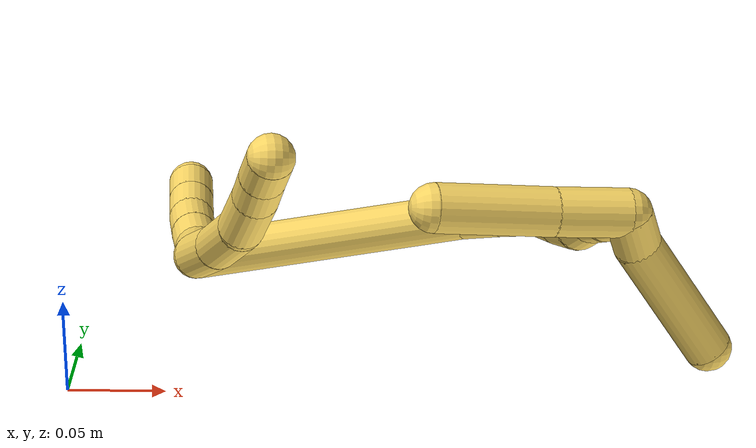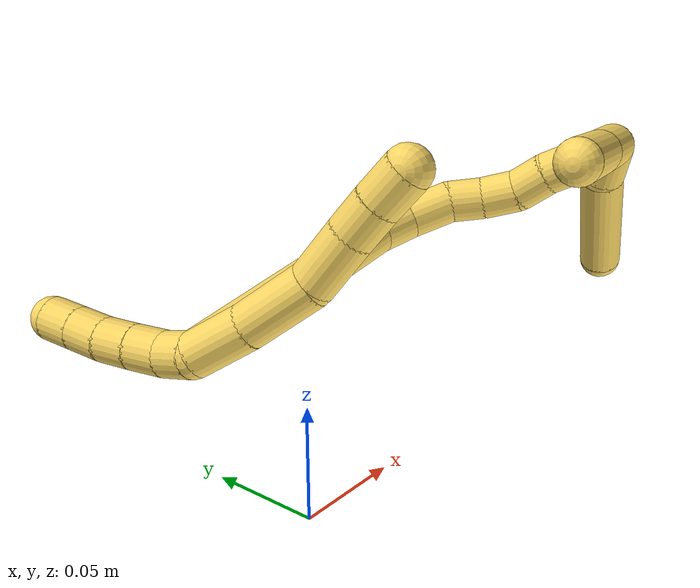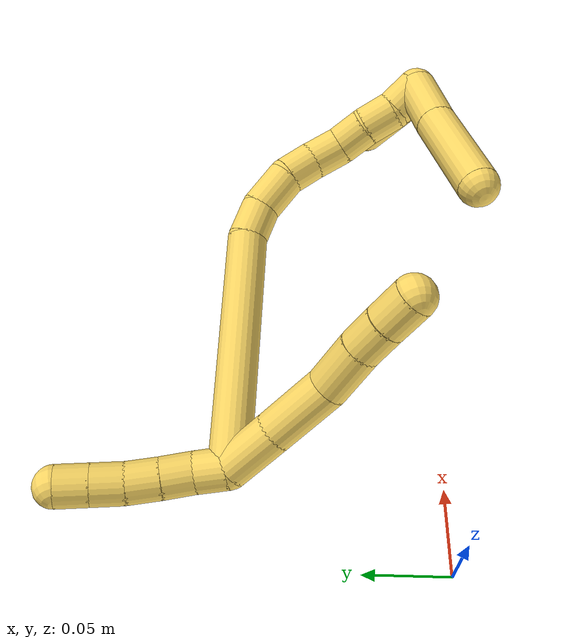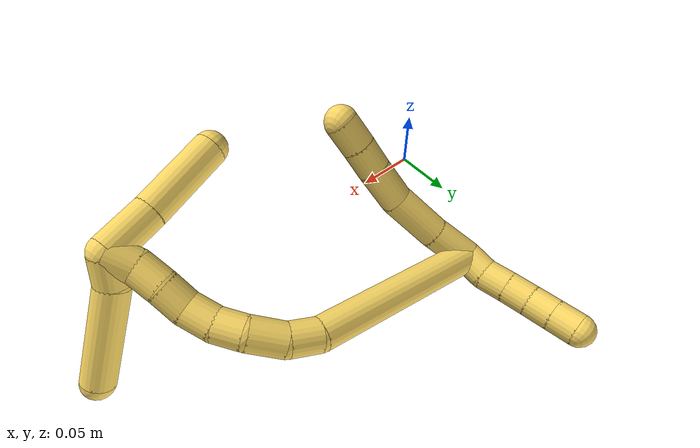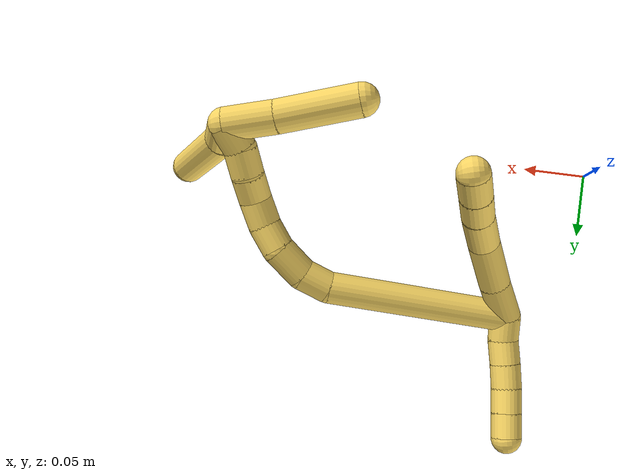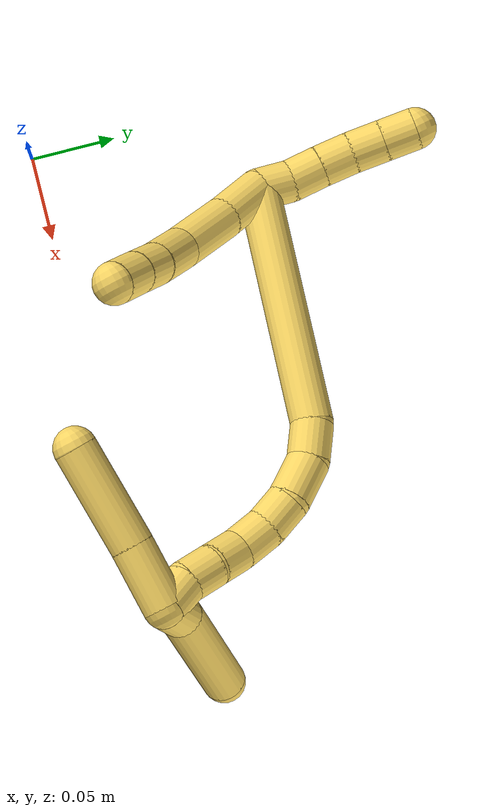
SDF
<sdf version="1.7">
 <world name="default">
  <model name="5">
   <static>0</static>
   <link name="5">
    <collision name="collision-cylinder-e_1_2_8">
     <pose>-0.003551 -0.016236 0.003003 1.38793 -0.211841 -0.176459</pose>
     <geometry><cylinder><radius>0.0125</radius><length>0.033777</length></cylinder></geometry>
     <surface>
      <friction><ode><mu>1.16</mu><mu2>1.16</mu2><slip1>0</slip1><slip2>0</slip2></ode></friction>
      <contact><ode><kp>1e+06</kp><kd>1</kd><max_vel>0</max_vel><min_depth>0.001</min_depth></ode></contact>
     </surface>
    </collision>
    <visual name="visual-cylinder-e_1_2_8">
     <pose>-0.003551 -0.016236 0.003003 1.38793 -0.211841 -0.176459</pose>
     <geometry><cylinder><radius>0.0125</radius><length>0.033777</length></cylinder></geometry>
     <material><ambient>1 0.858824 0.4 1</ambient></material>
    </visual>
    <collision name="collision-cylinder-e_2_8_9">
     <pose>-0.013066 -0.052105 0.008677 1.43553 -0.292364 -0.255701</pose>
     <geometry><cylinder><radius>0.0125</radius><length>0.041385</length></cylinder></geometry>
     <surface>
      <friction><ode><mu>1.16</mu><mu2>1.16</mu2><slip1>0</slip1><slip2>0</slip2></ode></friction>
      <contact><ode><kp>1e+06</kp><kd>1</kd><max_vel>0</max_vel><min_depth>0.001</min_depth></ode></contact>
     </surface>
    </collision>
    <visual name="visual-cylinder-e_2_8_9">
     <pose>-0.013066 -0.052105 0.008677 1.43553 -0.292364 -0.255701</pose>
     <geometry><cylinder><radius>0.0125</radius><length>0.041385</length></cylinder></geometry>
     <material><ambient>1 0.858824 0.4 1</ambient></material>
    </visual>
    <collision name="collision-cylinder-e_3_9_10">
     <pose>-0.02767 -0.084962 0.012596 1.47681 -0.576718 -0.527387</pose>
     <geometry><cylinder><radius>0.0125</radius><length>0.031691</length></cylinder></geometry>
     <surface>
      <friction><ode><mu>1.16</mu><mu2>1.16</mu2><slip1>0</slip1><slip2>0</slip2></ode></friction>
      <contact><ode><kp>1e+06</kp><kd>1</kd><max_vel>0</max_vel><min_depth>0.001</min_depth></ode></contact>
     </surface>
    </collision>
    <visual name="visual-cylinder-e_3_9_10">
     <pose>-0.02767 -0.084962 0.012596 1.47681 -0.576718 -0.527387</pose>
     <geometry><cylinder><radius>0.0125</radius><length>0.031691</length></cylinder></geometry>
     <material><ambient>1 0.858824 0.4 1</ambient></material>
    </visual>
    <collision name="collision-cylinder-e_4_10_11">
     <pose>-0.041745 -0.10725 0.013912 1.56317 -0.540081 -0.536172</pose>
     <geometry><cylinder><radius>0.0125</radius><length>0.021137</length></cylinder></geometry>
     <surface>
      <friction><ode><mu>1.16</mu><mu2>1.16</mu2><slip1>0</slip1><slip2>0</slip2></ode></friction>
      <contact><ode><kp>1e+06</kp><kd>1</kd><max_vel>0</max_vel><min_depth>0.001</min_depth></ode></contact>
     </surface>
    </collision>
    <visual name="visual-cylinder-e_4_10_11">
     <pose>-0.041745 -0.10725 0.013912 1.56317 -0.540081 -0.536172</pose>
     <geometry><cylinder><radius>0.0125</radius><length>0.021137</length></cylinder></geometry>
     <material><ambient>1 0.858824 0.4 1</ambient></material>
    </visual>
    <collision name="collision-cylinder-e_5_11_6">
     <pose>-0.052513 -0.125939 0.014141 1.55417 -0.506052 -0.498053</pose>
     <geometry><cylinder><radius>0.0125</radius><length>0.02201</length></cylinder></geometry>
     <surface>
      <friction><ode><mu>1.16</mu><mu2>1.16</mu2><slip1>0</slip1><slip2>0</slip2></ode></friction>
      <contact><ode><kp>1e+06</kp><kd>1</kd><max_vel>0</max_vel><min_depth>0.001</min_depth></ode></contact>
     </surface>
    </collision>
    <visual name="visual-cylinder-e_5_11_6">
     <pose>-0.052513 -0.125939 0.014141 1.55417 -0.506052 -0.498053</pose>
     <geometry><cylinder><radius>0.0125</radius><length>0.02201</length></cylinder></geometry>
     <material><ambient>1 0.858824 0.4 1</ambient></material>
    </visual>
    <collision name="collision-cylinder-e_1_2_12">
     <pose>-0.00159 0.009663 0.002024 -1.36432 -0.159677 0.12979</pose>
     <geometry><cylinder><radius>0.0125</radius><length>0.02</length></cylinder></geometry>
     <surface>
      <friction><ode><mu>1.16</mu><mu2>1.16</mu2><slip1>0</slip1><slip2>0</slip2></ode></friction>
      <contact><ode><kp>1e+06</kp><kd>1</kd><max_vel>0</max_vel><min_depth>0.001</min_depth></ode></contact>
     </surface>
    </collision>
    <visual name="visual-cylinder-e_1_2_12">
     <pose>-0.00159 0.009663 0.002024 -1.36432 -0.159677 0.12979</pose>
     <geometry><cylinder><radius>0.0125</radius><length>0.02</length></cylinder></geometry>
     <material><ambient>1 0.858824 0.4 1</ambient></material>
    </visual>
    <collision name="collision-cylinder-e_2_12_13">
     <pose>-0.006874 0.028612 0.004397 -1.53322 -0.378322 0.364678</pose>
     <geometry><cylinder><radius>0.0125</radius><length>0.02</length></cylinder></geometry>
     <surface>
      <friction><ode><mu>1.16</mu><mu2>1.16</mu2><slip1>0</slip1><slip2>0</slip2></ode></friction>
      <contact><ode><kp>1e+06</kp><kd>1</kd><max_vel>0</max_vel><min_depth>0.001</min_depth></ode></contact>
     </surface>
    </collision>
    <visual name="visual-cylinder-e_2_12_13">
     <pose>-0.006874 0.028612 0.004397 -1.53322 -0.378322 0.364678</pose>
     <geometry><cylinder><radius>0.0125</radius><length>0.02</length></cylinder></geometry>
     <material><ambient>1 0.858824 0.4 1</ambient></material>
    </visual>
    <collision name="collision-cylinder-e_3_13_14">
     <pose>-0.014324 0.047139 0.00545 -1.49483 -0.385154 0.357573</pose>
     <geometry><cylinder><radius>0.0125</radius><length>0.02</length></cylinder></geometry>
     <surface>
      <friction><ode><mu>1.16</mu><mu2>1.16</mu2><slip1>0</slip1><slip2>0</slip2></ode></friction>
      <contact><ode><kp>1e+06</kp><kd>1</kd><max_vel>0</max_vel><min_depth>0.001</min_depth></ode></contact>
     </surface>
    </collision>
    <visual name="visual-cylinder-e_3_13_14">
     <pose>-0.014324 0.047139 0.00545 -1.49483 -0.385154 0.357573</pose>
     <geometry><cylinder><radius>0.0125</radius><length>0.02</length></cylinder></geometry>
     <material><ambient>1 0.858824 0.4 1</ambient></material>
    </visual>
    <collision name="collision-cylinder-e_4_14_15">
     <pose>-0.022601 0.06521 0.007422 -1.42808 -0.46899 0.408267</pose>
     <geometry><cylinder><radius>0.0125</radius><length>0.02</length></cylinder></geometry>
     <surface>
      <friction><ode><mu>1.16</mu><mu2>1.16</mu2><slip1>0</slip1><slip2>0</slip2></ode></friction>
      <contact><ode><kp>1e+06</kp><kd>1</kd><max_vel>0</max_vel><min_depth>0.001</min_depth></ode></contact>
     </surface>
    </collision>
    <visual name="visual-cylinder-e_4_14_15">
     <pose>-0.022601 0.06521 0.007422 -1.42808 -0.46899 0.408267</pose>
     <geometry><cylinder><radius>0.0125</radius><length>0.02</length></cylinder></geometry>
     <material><ambient>1 0.858824 0.4 1</ambient></material>
    </visual>
    <collision name="collision-cylinder-e_5_15_5">
     <pose>-0.031648 0.082864 0.009966 -1.42724 -0.469769 0.408612</pose>
     <geometry><cylinder><radius>0.0125</radius><length>0.02</length></cylinder></geometry>
     <surface>
      <friction><ode><mu>1.16</mu><mu2>1.16</mu2><slip1>0</slip1><slip2>0</slip2></ode></friction>
      <contact><ode><kp>1e+06</kp><kd>1</kd><max_vel>0</max_vel><min_depth>0.001</min_depth></ode></contact>
     </surface>
    </collision>
    <visual name="visual-cylinder-e_5_15_5">
     <pose>-0.031648 0.082864 0.009966 -1.42724 -0.469769 0.408612</pose>
     <geometry><cylinder><radius>0.0125</radius><length>0.02</length></cylinder></geometry>
     <material><ambient>1 0.858824 0.4 1</ambient></material>
    </visual>
    <collision name="collision-cylinder-e_1_2_16">
     <pose>-0.013016 -0.026775 0.067384 0.378221 -0.177621 -0.034083</pose>
     <geometry><cylinder><radius>0.0125</radius><length>0.147334</length></cylinder></geometry>
     <surface>
      <friction><ode><mu>1.16</mu><mu2>1.16</mu2><slip1>0</slip1><slip2>0</slip2></ode></friction>
      <contact><ode><kp>1e+06</kp><kd>1</kd><max_vel>0</max_vel><min_depth>0.001</min_depth></ode></contact>
     </surface>
    </collision>
    <visual name="visual-cylinder-e_1_2_16">
     <pose>-0.013016 -0.026775 0.067384 0.378221 -0.177621 -0.034083</pose>
     <geometry><cylinder><radius>0.0125</radius><length>0.147334</length></cylinder></geometry>
     <material><ambient>1 0.858824 0.4 1</ambient></material>
    </visual>
    <collision name="collision-cylinder-e_2_16_17">
     <pose>-0.027211 -0.060798 0.143576 0.688518 -0.102936 -0.036935</pose>
     <geometry><cylinder><radius>0.0125</radius><length>0.022936</length></cylinder></geometry>
     <surface>
      <friction><ode><mu>1.16</mu><mu2>1.16</mu2><slip1>0</slip1><slip2>0</slip2></ode></friction>
      <contact><ode><kp>1e+06</kp><kd>1</kd><max_vel>0</max_vel><min_depth>0.001</min_depth></ode></contact>
     </surface>
    </collision>
    <visual name="visual-cylinder-e_2_16_17">
     <pose>-0.027211 -0.060798 0.143576 0.688518 -0.102936 -0.036935</pose>
     <geometry><cylinder><radius>0.0125</radius><length>0.022936</length></cylinder></geometry>
     <material><ambient>1 0.858824 0.4 1</ambient></material>
    </visual>
    <collision name="collision-cylinder-e_3_17_18">
     <pose>-0.02941 -0.079597 0.159304 1.03106 -0.075695 -0.042906</pose>
     <geometry><cylinder><radius>0.0125</radius><length>0.027007</length></cylinder></geometry>
     <surface>
      <friction><ode><mu>1.16</mu><mu2>1.16</mu2><slip1>0</slip1><slip2>0</slip2></ode></friction>
      <contact><ode><kp>1e+06</kp><kd>1</kd><max_vel>0</max_vel><min_depth>0.001</min_depth></ode></contact>
     </surface>
    </collision>
    <visual name="visual-cylinder-e_3_17_18">
     <pose>-0.02941 -0.079597 0.159304 1.03106 -0.075695 -0.042906</pose>
     <geometry><cylinder><radius>0.0125</radius><length>0.027007</length></cylinder></geometry>
     <material><ambient>1 0.858824 0.4 1</ambient></material>
    </visual>
    <collision name="collision-cylinder-e_4_18_19">
     <pose>-0.02852 -0.100475 0.169827 1.20213 0.188911 0.129741</pose>
     <geometry><cylinder><radius>0.0125</radius><length>0.020361</length></cylinder></geometry>
     <surface>
      <friction><ode><mu>1.16</mu><mu2>1.16</mu2><slip1>0</slip1><slip2>0</slip2></ode></friction>
      <contact><ode><kp>1e+06</kp><kd>1</kd><max_vel>0</max_vel><min_depth>0.001</min_depth></ode></contact>
     </surface>
    </collision>
    <visual name="visual-cylinder-e_4_18_19">
     <pose>-0.02852 -0.100475 0.169827 1.20213 0.188911 0.129741</pose>
     <geometry><cylinder><radius>0.0125</radius><length>0.020361</length></cylinder></geometry>
     <material><ambient>1 0.858824 0.4 1</ambient></material>
    </visual>
    <collision name="collision-cylinder-e_5_19_20">
     <pose>-0.025879 -0.120305 0.175133 1.4101 0.068343 0.058163</pose>
     <geometry><cylinder><radius>0.0125</radius><length>0.021328</length></cylinder></geometry>
     <surface>
      <friction><ode><mu>1.16</mu><mu2>1.16</mu2><slip1>0</slip1><slip2>0</slip2></ode></friction>
      <contact><ode><kp>1e+06</kp><kd>1</kd><max_vel>0</max_vel><min_depth>0.001</min_depth></ode></contact>
     </surface>
    </collision>
    <visual name="visual-cylinder-e_5_19_20">
     <pose>-0.025879 -0.120305 0.175133 1.4101 0.068343 0.058163</pose>
     <geometry><cylinder><radius>0.0125</radius><length>0.021328</length></cylinder></geometry>
     <material><ambient>1 0.858824 0.4 1</ambient></material>
    </visual>
    <collision name="collision-cylinder-e_6_20_21">
     <pose>-0.027671 -0.140691 0.177068 1.54727 -0.249522 -0.243778</pose>
     <geometry><cylinder><radius>0.0125</radius><length>0.020405</length></cylinder></geometry>
     <surface>
      <friction><ode><mu>1.16</mu><mu2>1.16</mu2><slip1>0</slip1><slip2>0</slip2></ode></friction>
      <contact><ode><kp>1e+06</kp><kd>1</kd><max_vel>0</max_vel><min_depth>0.001</min_depth></ode></contact>
     </surface>
    </collision>
    <visual name="visual-cylinder-e_6_20_21">
     <pose>-0.027671 -0.140691 0.177068 1.54727 -0.249522 -0.243778</pose>
     <geometry><cylinder><radius>0.0125</radius><length>0.020405</length></cylinder></geometry>
     <material><ambient>1 0.858824 0.4 1</ambient></material>
    </visual>
    <collision name="collision-cylinder-e_7_21_22">
     <pose>-0.031073 -0.160765 0.177688 1.53273 -0.086393 -0.083169</pose>
     <geometry><cylinder><radius>0.0125</radius><length>0.020473</length></cylinder></geometry>
     <surface>
      <friction><ode><mu>1.16</mu><mu2>1.16</mu2><slip1>0</slip1><slip2>0</slip2></ode></friction>
      <contact><ode><kp>1e+06</kp><kd>1</kd><max_vel>0</max_vel><min_depth>0.001</min_depth></ode></contact>
     </surface>
    </collision>
    <visual name="visual-cylinder-e_7_21_22">
     <pose>-0.031073 -0.160765 0.177688 1.53273 -0.086393 -0.083169</pose>
     <geometry><cylinder><radius>0.0125</radius><length>0.020473</length></cylinder></geometry>
     <material><ambient>1 0.858824 0.4 1</ambient></material>
    </visual>
    <collision name="collision-cylinder-e_8_22_1">
     <pose>-0.033551 -0.180423 0.181142 1.25764 -0.158857 -0.115653</pose>
     <geometry><cylinder><radius>0.0125</radius><length>0.020155</length></cylinder></geometry>
     <surface>
      <friction><ode><mu>1.16</mu><mu2>1.16</mu2><slip1>0</slip1><slip2>0</slip2></ode></friction>
      <contact><ode><kp>1e+06</kp><kd>1</kd><max_vel>0</max_vel><min_depth>0.001</min_depth></ode></contact>
     </surface>
    </collision>
    <visual name="visual-cylinder-e_8_22_1">
     <pose>-0.033551 -0.180423 0.181142 1.25764 -0.158857 -0.115653</pose>
     <geometry><cylinder><radius>0.0125</radius><length>0.020155</length></cylinder></geometry>
     <material><ambient>1 0.858824 0.4 1</ambient></material>
    </visual>
    <collision name="collision-cylinder-e_1_1_23">
     <pose>-0.035156 -0.189932 0.165225 3.13942 -0.000584 -0.524577</pose>
     <geometry><cylinder><radius>0.0125</radius><length>0.037966</length></cylinder></geometry>
     <surface>
      <friction><ode><mu>1.16</mu><mu2>1.16</mu2><slip1>0</slip1><slip2>0</slip2></ode></friction>
      <contact><ode><kp>1e+06</kp><kd>1</kd><max_vel>0</max_vel><min_depth>0.001</min_depth></ode></contact>
     </surface>
    </collision>
    <visual name="visual-cylinder-e_1_1_23">
     <pose>-0.035156 -0.189932 0.165225 3.13942 -0.000584 -0.524577</pose>
     <geometry><cylinder><radius>0.0125</radius><length>0.037966</length></cylinder></geometry>
     <material><ambient>1 0.858824 0.4 1</ambient></material>
    </visual>
    <collision name="collision-cylinder-e_2_23_4">
     <pose>-0.035834 -0.19155 0.115272 3.09072 -0.021518 -0.800149</pose>
     <geometry><cylinder><radius>0.0125</radius><length>0.062034</length></cylinder></geometry>
     <surface>
      <friction><ode><mu>1.16</mu><mu2>1.16</mu2><slip1>0</slip1><slip2>0</slip2></ode></friction>
      <contact><ode><kp>1e+06</kp><kd>1</kd><max_vel>0</max_vel><min_depth>0.001</min_depth></ode></contact>
     </surface>
    </collision>
    <visual name="visual-cylinder-e_2_23_4">
     <pose>-0.035834 -0.19155 0.115272 3.09072 -0.021518 -0.800149</pose>
     <geometry><cylinder><radius>0.0125</radius><length>0.062034</length></cylinder></geometry>
     <material><ambient>1 0.858824 0.4 1</ambient></material>
    </visual>
    <collision name="collision-cylinder-e_1_1_24">
     <pose>-0.026871 -0.18356 0.189025 -0.920281 0.805054 -0.415946</pose>
     <geometry><cylinder><radius>0.0125</radius><length>0.022955</length></cylinder></geometry>
     <surface>
      <friction><ode><mu>1.16</mu><mu2>1.16</mu2><slip1>0</slip1><slip2>0</slip2></ode></friction>
      <contact><ode><kp>1e+06</kp><kd>1</kd><max_vel>0</max_vel><min_depth>0.001</min_depth></ode></contact>
     </surface>
    </collision>
    <visual name="visual-cylinder-e_1_1_24">
     <pose>-0.026871 -0.18356 0.189025 -0.920281 0.805054 -0.415946</pose>
     <geometry><cylinder><radius>0.0125</radius><length>0.022955</length></cylinder></geometry>
     <material><ambient>1 0.858824 0.4 1</ambient></material>
    </visual>
    <collision name="collision-cylinder-e_2_24_3">
     <pose>0.008333 -0.16385 0.217919 -0.507236 0.774126 -0.210532</pose>
     <geometry><cylinder><radius>0.0125</radius><length>0.077045</length></cylinder></geometry>
     <surface>
      <friction><ode><mu>1.16</mu><mu2>1.16</mu2><slip1>0</slip1><slip2>0</slip2></ode></friction>
      <contact><ode><kp>1e+06</kp><kd>1</kd><max_vel>0</max_vel><min_depth>0.001</min_depth></ode></contact>
     </surface>
    </collision>
    <visual name="visual-cylinder-e_2_24_3">
     <pose>0.008333 -0.16385 0.217919 -0.507236 0.774126 -0.210532</pose>
     <geometry><cylinder><radius>0.0125</radius><length>0.077045</length></cylinder></geometry>
     <material><ambient>1 0.858824 0.4 1</ambient></material>
    </visual>
    <collision name="collision-sphere-3">
     <pose>0.035264 -0.150469 0.241995 0 -0 0</pose>
     <geometry><sphere><radius>0.0125</radius></sphere></geometry>
     <surface>
      <friction><ode><mu>1.16</mu><mu2>1.16</mu2><slip1>0</slip1><slip2>0</slip2></ode></friction>
      <contact><ode><kp>1e+06</kp><kd>1</kd><max_vel>0</max_vel><min_depth>0.001</min_depth></ode></contact>
     </surface>
    </collision>
    <visual name="visual-sphere-3">
     <pose>0.035264 -0.150469 0.241995 0 -0 0</pose>
     <geometry><sphere><radius>0.0125</radius></sphere></geometry>
     <material><ambient>1 0.858824 0.4 1</ambient></material>
    </visual>
    <collision name="collision-sphere-24">
     <pose>-0.018598 -0.17723 0.193842 0 -0 0</pose>
     <geometry><sphere><radius>0.0125</radius></sphere></geometry>
     <surface>
      <friction><ode><mu>1.16</mu><mu2>1.16</mu2><slip1>0</slip1><slip2>0</slip2></ode></friction>
      <contact><ode><kp>1e+06</kp><kd>1</kd><max_vel>0</max_vel><min_depth>0.001</min_depth></ode></contact>
     </surface>
    </collision>
    <visual name="visual-sphere-24">
     <pose>-0.018598 -0.17723 0.193842 0 -0 0</pose>
     <geometry><sphere><radius>0.0125</radius></sphere></geometry>
     <material><ambient>1 0.858824 0.4 1</ambient></material>
    </visual>
    <collision name="collision-sphere-4">
     <pose>-0.036502 -0.193127 0.084302 0 -0 0</pose>
     <geometry><sphere><radius>0.0125</radius></sphere></geometry>
     <surface>
      <friction><ode><mu>1.16</mu><mu2>1.16</mu2><slip1>0</slip1><slip2>0</slip2></ode></friction>
      <contact><ode><kp>1e+06</kp><kd>1</kd><max_vel>0</max_vel><min_depth>0.001</min_depth></ode></contact>
     </surface>
    </collision>
    <visual name="visual-sphere-4">
     <pose>-0.036502 -0.193127 0.084302 0 -0 0</pose>
     <geometry><sphere><radius>0.0125</radius></sphere></geometry>
     <material><ambient>1 0.858824 0.4 1</ambient></material>
    </visual>
    <collision name="collision-sphere-23">
     <pose>-0.035167 -0.189973 0.146242 0 -0 0</pose>
     <geometry><sphere><radius>0.0125</radius></sphere></geometry>
     <surface>
      <friction><ode><mu>1.16</mu><mu2>1.16</mu2><slip1>0</slip1><slip2>0</slip2></ode></friction>
      <contact><ode><kp>1e+06</kp><kd>1</kd><max_vel>0</max_vel><min_depth>0.001</min_depth></ode></contact>
     </surface>
    </collision>
    <visual name="visual-sphere-23">
     <pose>-0.035167 -0.189973 0.146242 0 -0 0</pose>
     <geometry><sphere><radius>0.0125</radius></sphere></geometry>
     <material><ambient>1 0.858824 0.4 1</ambient></material>
    </visual>
    <collision name="collision-sphere-1">
     <pose>-0.035145 -0.18989 0.184207 0 -0 0</pose>
     <geometry><sphere><radius>0.0125</radius></sphere></geometry>
     <surface>
      <friction><ode><mu>1.16</mu><mu2>1.16</mu2><slip1>0</slip1><slip2>0</slip2></ode></friction>
      <contact><ode><kp>1e+06</kp><kd>1</kd><max_vel>0</max_vel><min_depth>0.001</min_depth></ode></contact>
     </surface>
    </collision>
    <visual name="visual-sphere-1">
     <pose>-0.035145 -0.18989 0.184207 0 -0 0</pose>
     <geometry><sphere><radius>0.0125</radius></sphere></geometry>
     <material><ambient>1 0.858824 0.4 1</ambient></material>
    </visual>
    <collision name="collision-sphere-22">
     <pose>-0.031957 -0.170956 0.178076 0 -0 0</pose>
     <geometry><sphere><radius>0.0125</radius></sphere></geometry>
     <surface>
      <friction><ode><mu>1.16</mu><mu2>1.16</mu2><slip1>0</slip1><slip2>0</slip2></ode></friction>
      <contact><ode><kp>1e+06</kp><kd>1</kd><max_vel>0</max_vel><min_depth>0.001</min_depth></ode></contact>
     </surface>
    </collision>
    <visual name="visual-sphere-22">
     <pose>-0.031957 -0.170956 0.178076 0 -0 0</pose>
     <geometry><sphere><radius>0.0125</radius></sphere></geometry>
     <material><ambient>1 0.858824 0.4 1</ambient></material>
    </visual>
    <collision name="collision-sphere-21">
     <pose>-0.03019 -0.150574 0.1773 0 -0 0</pose>
     <geometry><sphere><radius>0.0125</radius></sphere></geometry>
     <surface>
      <friction><ode><mu>1.16</mu><mu2>1.16</mu2><slip1>0</slip1><slip2>0</slip2></ode></friction>
      <contact><ode><kp>1e+06</kp><kd>1</kd><max_vel>0</max_vel><min_depth>0.001</min_depth></ode></contact>
     </surface>
    </collision>
    <visual name="visual-sphere-21">
     <pose>-0.03019 -0.150574 0.1773 0 -0 0</pose>
     <geometry><sphere><radius>0.0125</radius></sphere></geometry>
     <material><ambient>1 0.858824 0.4 1</ambient></material>
    </visual>
    <collision name="collision-sphere-6">
     <pose>-0.057848 -0.135563 0.014301 0 -0 0</pose>
     <geometry><sphere><radius>0.0125</radius></sphere></geometry>
     <surface>
      <friction><ode><mu>1.16</mu><mu2>1.16</mu2><slip1>0</slip1><slip2>0</slip2></ode></friction>
      <contact><ode><kp>1e+06</kp><kd>1</kd><max_vel>0</max_vel><min_depth>0.001</min_depth></ode></contact>
     </surface>
    </collision>
    <visual name="visual-sphere-6">
     <pose>-0.057848 -0.135563 0.014301 0 -0 0</pose>
     <geometry><sphere><radius>0.0125</radius></sphere></geometry>
     <material><ambient>1 0.858824 0.4 1</ambient></material>
    </visual>
    <collision name="collision-sphere-11">
     <pose>-0.047179 -0.116315 0.013981 0 -0 0</pose>
     <geometry><sphere><radius>0.0125</radius></sphere></geometry>
     <surface>
      <friction><ode><mu>1.16</mu><mu2>1.16</mu2><slip1>0</slip1><slip2>0</slip2></ode></friction>
      <contact><ode><kp>1e+06</kp><kd>1</kd><max_vel>0</max_vel><min_depth>0.001</min_depth></ode></contact>
     </surface>
    </collision>
    <visual name="visual-sphere-11">
     <pose>-0.047179 -0.116315 0.013981 0 -0 0</pose>
     <geometry><sphere><radius>0.0125</radius></sphere></geometry>
     <material><ambient>1 0.858824 0.4 1</ambient></material>
    </visual>
    <collision name="collision-sphere-10">
     <pose>-0.03631 -0.098186 0.013842 0 -0 0</pose>
     <geometry><sphere><radius>0.0125</radius></sphere></geometry>
     <surface>
      <friction><ode><mu>1.16</mu><mu2>1.16</mu2><slip1>0</slip1><slip2>0</slip2></ode></friction>
      <contact><ode><kp>1e+06</kp><kd>1</kd><max_vel>0</max_vel><min_depth>0.001</min_depth></ode></contact>
     </surface>
    </collision>
    <visual name="visual-sphere-10">
     <pose>-0.03631 -0.098186 0.013842 0 -0 0</pose>
     <geometry><sphere><radius>0.0125</radius></sphere></geometry>
     <material><ambient>1 0.858824 0.4 1</ambient></material>
    </visual>
    <collision name="collision-sphere-9">
     <pose>-0.01903 -0.071738 0.011349 0 -0 0</pose>
     <geometry><sphere><radius>0.0125</radius></sphere></geometry>
     <surface>
      <friction><ode><mu>1.16</mu><mu2>1.16</mu2><slip1>0</slip1><slip2>0</slip2></ode></friction>
      <contact><ode><kp>1e+06</kp><kd>1</kd><max_vel>0</max_vel><min_depth>0.001</min_depth></ode></contact>
     </surface>
    </collision>
    <visual name="visual-sphere-9">
     <pose>-0.01903 -0.071738 0.011349 0 -0 0</pose>
     <geometry><sphere><radius>0.0125</radius></sphere></geometry>
     <material><ambient>1 0.858824 0.4 1</ambient></material>
    </visual>
    <collision name="collision-sphere-2">
     <geometry><sphere><radius>0.0125</radius></sphere></geometry>
     <surface>
      <friction><ode><mu>1.16</mu><mu2>1.16</mu2><slip1>0</slip1><slip2>0</slip2></ode></friction>
      <contact><ode><kp>1e+06</kp><kd>1</kd><max_vel>0</max_vel><min_depth>0.001</min_depth></ode></contact>
     </surface>
    </collision>
    <visual name="visual-sphere-2">
     <geometry><sphere><radius>0.0125</radius></sphere></geometry>
     <material><ambient>1 0.858824 0.4 1</ambient></material>
    </visual>
    <collision name="collision-sphere-19">
     <pose>-0.026608 -0.109803 0.17343 0 -0 0</pose>
     <geometry><sphere><radius>0.0125</radius></sphere></geometry>
     <surface>
      <friction><ode><mu>1.16</mu><mu2>1.16</mu2><slip1>0</slip1><slip2>0</slip2></ode></friction>
      <contact><ode><kp>1e+06</kp><kd>1</kd><max_vel>0</max_vel><min_depth>0.001</min_depth></ode></contact>
     </surface>
    </collision>
    <visual name="visual-sphere-19">
     <pose>-0.026608 -0.109803 0.17343 0 -0 0</pose>
     <geometry><sphere><radius>0.0125</radius></sphere></geometry>
     <material><ambient>1 0.858824 0.4 1</ambient></material>
    </visual>
    <collision name="collision-sphere-8">
     <pose>-0.007102 -0.032471 0.006005 0 -0 0</pose>
     <geometry><sphere><radius>0.0125</radius></sphere></geometry>
     <surface>
      <friction><ode><mu>1.16</mu><mu2>1.16</mu2><slip1>0</slip1><slip2>0</slip2></ode></friction>
      <contact><ode><kp>1e+06</kp><kd>1</kd><max_vel>0</max_vel><min_depth>0.001</min_depth></ode></contact>
     </surface>
    </collision>
    <visual name="visual-sphere-8">
     <pose>-0.007102 -0.032471 0.006005 0 -0 0</pose>
     <geometry><sphere><radius>0.0125</radius></sphere></geometry>
     <material><ambient>1 0.858824 0.4 1</ambient></material>
    </visual>
    <collision name="collision-sphere-12">
     <pose>-0.00318 0.019326 0.004048 0 -0 0</pose>
     <geometry><sphere><radius>0.0125</radius></sphere></geometry>
     <surface>
      <friction><ode><mu>1.16</mu><mu2>1.16</mu2><slip1>0</slip1><slip2>0</slip2></ode></friction>
      <contact><ode><kp>1e+06</kp><kd>1</kd><max_vel>0</max_vel><min_depth>0.001</min_depth></ode></contact>
     </surface>
    </collision>
    <visual name="visual-sphere-12">
     <pose>-0.00318 0.019326 0.004048 0 -0 0</pose>
     <geometry><sphere><radius>0.0125</radius></sphere></geometry>
     <material><ambient>1 0.858824 0.4 1</ambient></material>
    </visual>
    <collision name="collision-sphere-13">
     <pose>-0.010567 0.037899 0.004746 0 -0 0</pose>
     <geometry><sphere><radius>0.0125</radius></sphere></geometry>
     <surface>
      <friction><ode><mu>1.16</mu><mu2>1.16</mu2><slip1>0</slip1><slip2>0</slip2></ode></friction>
      <contact><ode><kp>1e+06</kp><kd>1</kd><max_vel>0</max_vel><min_depth>0.001</min_depth></ode></contact>
     </surface>
    </collision>
    <visual name="visual-sphere-13">
     <pose>-0.010567 0.037899 0.004746 0 -0 0</pose>
     <geometry><sphere><radius>0.0125</radius></sphere></geometry>
     <material><ambient>1 0.858824 0.4 1</ambient></material>
    </visual>
    <collision name="collision-sphere-14">
     <pose>-0.018081 0.05638 0.006153 0 -0 0</pose>
     <geometry><sphere><radius>0.0125</radius></sphere></geometry>
     <surface>
      <friction><ode><mu>1.16</mu><mu2>1.16</mu2><slip1>0</slip1><slip2>0</slip2></ode></friction>
      <contact><ode><kp>1e+06</kp><kd>1</kd><max_vel>0</max_vel><min_depth>0.001</min_depth></ode></contact>
     </surface>
    </collision>
    <visual name="visual-sphere-14">
     <pose>-0.018081 0.05638 0.006153 0 -0 0</pose>
     <geometry><sphere><radius>0.0125</radius></sphere></geometry>
     <material><ambient>1 0.858824 0.4 1</ambient></material>
    </visual>
    <collision name="collision-sphere-15">
     <pose>-0.027121 0.074039 0.00869 0 -0 0</pose>
     <geometry><sphere><radius>0.0125</radius></sphere></geometry>
     <surface>
      <friction><ode><mu>1.16</mu><mu2>1.16</mu2><slip1>0</slip1><slip2>0</slip2></ode></friction>
      <contact><ode><kp>1e+06</kp><kd>1</kd><max_vel>0</max_vel><min_depth>0.001</min_depth></ode></contact>
     </surface>
    </collision>
    <visual name="visual-sphere-15">
     <pose>-0.027121 0.074039 0.00869 0 -0 0</pose>
     <geometry><sphere><radius>0.0125</radius></sphere></geometry>
     <material><ambient>1 0.858824 0.4 1</ambient></material>
    </visual>
    <collision name="collision-sphere-5">
     <pose>-0.036175 0.091689 0.011242 0 -0 0</pose>
     <geometry><sphere><radius>0.0125</radius></sphere></geometry>
     <surface>
      <friction><ode><mu>1.16</mu><mu2>1.16</mu2><slip1>0</slip1><slip2>0</slip2></ode></friction>
      <contact><ode><kp>1e+06</kp><kd>1</kd><max_vel>0</max_vel><min_depth>0.001</min_depth></ode></contact>
     </surface>
    </collision>
    <visual name="visual-sphere-5">
     <pose>-0.036175 0.091689 0.011242 0 -0 0</pose>
     <geometry><sphere><radius>0.0125</radius></sphere></geometry>
     <material><ambient>1 0.858824 0.4 1</ambient></material>
    </visual>
    <collision name="collision-sphere-16">
     <pose>-0.026032 -0.05355 0.134767 0 -0 0</pose>
     <geometry><sphere><radius>0.0125</radius></sphere></geometry>
     <surface>
      <friction><ode><mu>1.16</mu><mu2>1.16</mu2><slip1>0</slip1><slip2>0</slip2></ode></friction>
      <contact><ode><kp>1e+06</kp><kd>1</kd><max_vel>0</max_vel><min_depth>0.001</min_depth></ode></contact>
     </surface>
    </collision>
    <visual name="visual-sphere-16">
     <pose>-0.026032 -0.05355 0.134767 0 -0 0</pose>
     <geometry><sphere><radius>0.0125</radius></sphere></geometry>
     <material><ambient>1 0.858824 0.4 1</ambient></material>
    </visual>
    <collision name="collision-sphere-17">
     <pose>-0.028389 -0.068046 0.152384 0 -0 0</pose>
     <geometry><sphere><radius>0.0125</radius></sphere></geometry>
     <surface>
      <friction><ode><mu>1.16</mu><mu2>1.16</mu2><slip1>0</slip1><slip2>0</slip2></ode></friction>
      <contact><ode><kp>1e+06</kp><kd>1</kd><max_vel>0</max_vel><min_depth>0.001</min_depth></ode></contact>
     </surface>
    </collision>
    <visual name="visual-sphere-17">
     <pose>-0.028389 -0.068046 0.152384 0 -0 0</pose>
     <geometry><sphere><radius>0.0125</radius></sphere></geometry>
     <material><ambient>1 0.858824 0.4 1</ambient></material>
    </visual>
    <collision name="collision-sphere-18">
     <pose>-0.030431 -0.091147 0.166223 0 -0 0</pose>
     <geometry><sphere><radius>0.0125</radius></sphere></geometry>
     <surface>
      <friction><ode><mu>1.16</mu><mu2>1.16</mu2><slip1>0</slip1><slip2>0</slip2></ode></friction>
      <contact><ode><kp>1e+06</kp><kd>1</kd><max_vel>0</max_vel><min_depth>0.001</min_depth></ode></contact>
     </surface>
    </collision>
    <visual name="visual-sphere-18">
     <pose>-0.030431 -0.091147 0.166223 0 -0 0</pose>
     <geometry><sphere><radius>0.0125</radius></sphere></geometry>
     <material><ambient>1 0.858824 0.4 1</ambient></material>
    </visual>
    <collision name="collision-sphere-20">
     <pose>-0.025151 -0.130807 0.176835 0 -0 0</pose>
     <geometry><sphere><radius>0.0125</radius></sphere></geometry>
     <surface>
      <friction><ode><mu>1.16</mu><mu2>1.16</mu2><slip1>0</slip1><slip2>0</slip2></ode></friction>
      <contact><ode><kp>1e+06</kp><kd>1</kd><max_vel>0</max_vel><min_depth>0.001</min_depth></ode></contact>
     </surface>
    </collision>
    <visual name="visual-sphere-20">
     <pose>-0.025151 -0.130807 0.176835 0 -0 0</pose>
     <geometry><sphere><radius>0.0125</radius></sphere></geometry>
     <material><ambient>1 0.858824 0.4 1</ambient></material>
    </visual>
    <inertial>
     <pose>-0.019993 -0.084796 0.096294 0 -0 0</pose>
     <mass>0.75</mass>
     <inertia>
      <ixx>0.00031</ixx>
      <ixy>0</ixy>
      <ixz>0</ixz>
      <iyy>0.000229</iyy>
      <iyz>0</iyz>
      <izz>0.000148</izz>
     </inertia>
    </inertial>
   </link>
   <pose>0.053813 0.124106 0.016253 -1.86257 1.17603 -1.59901</pose>
  </model>
 </world>
</sdf>
